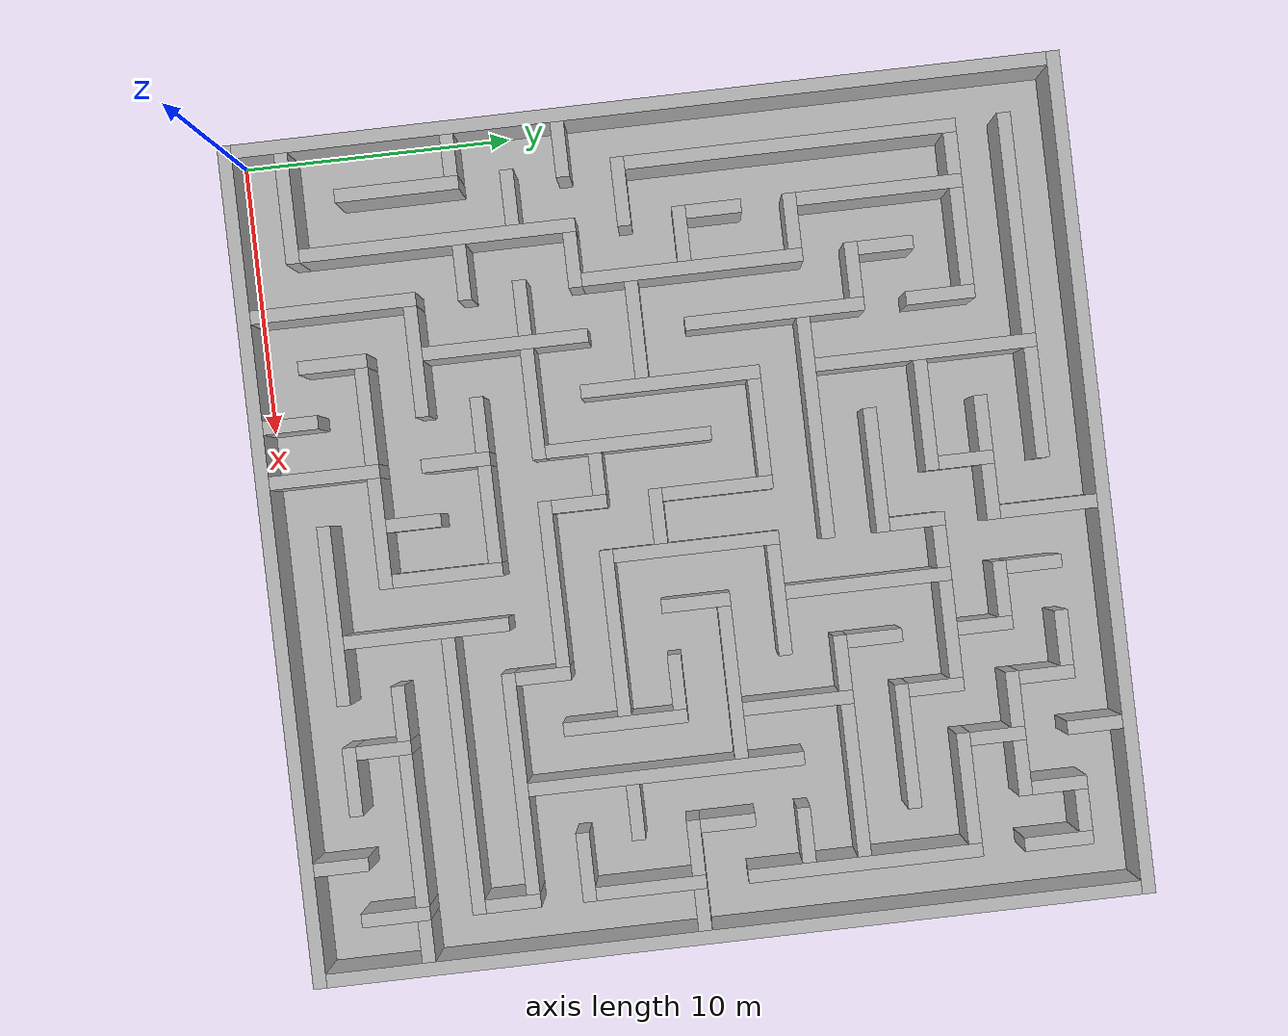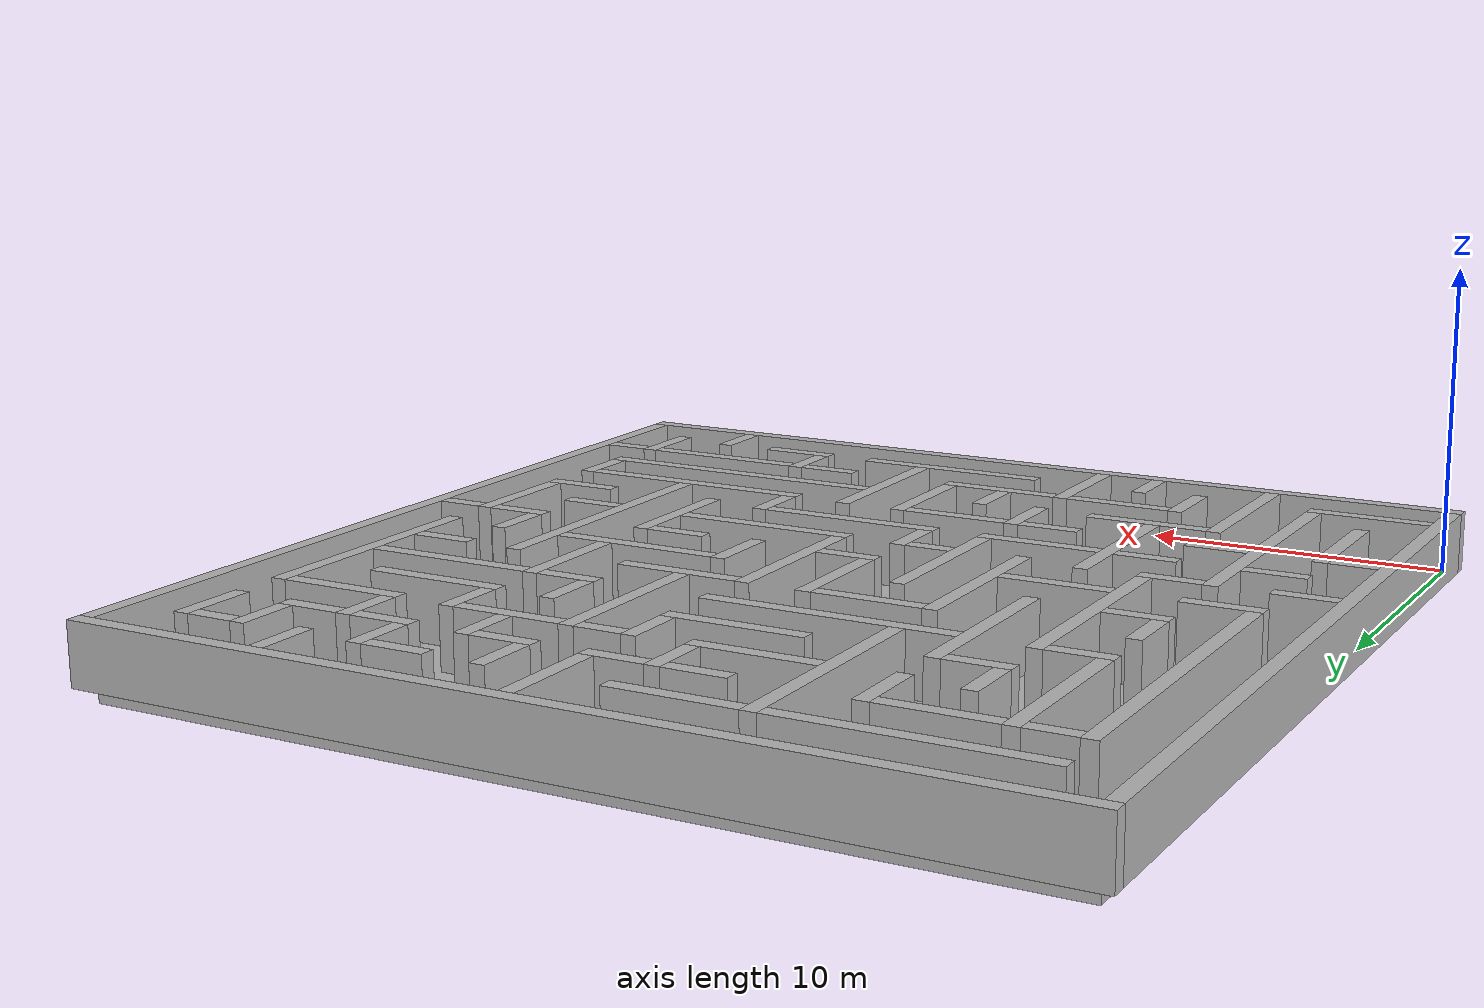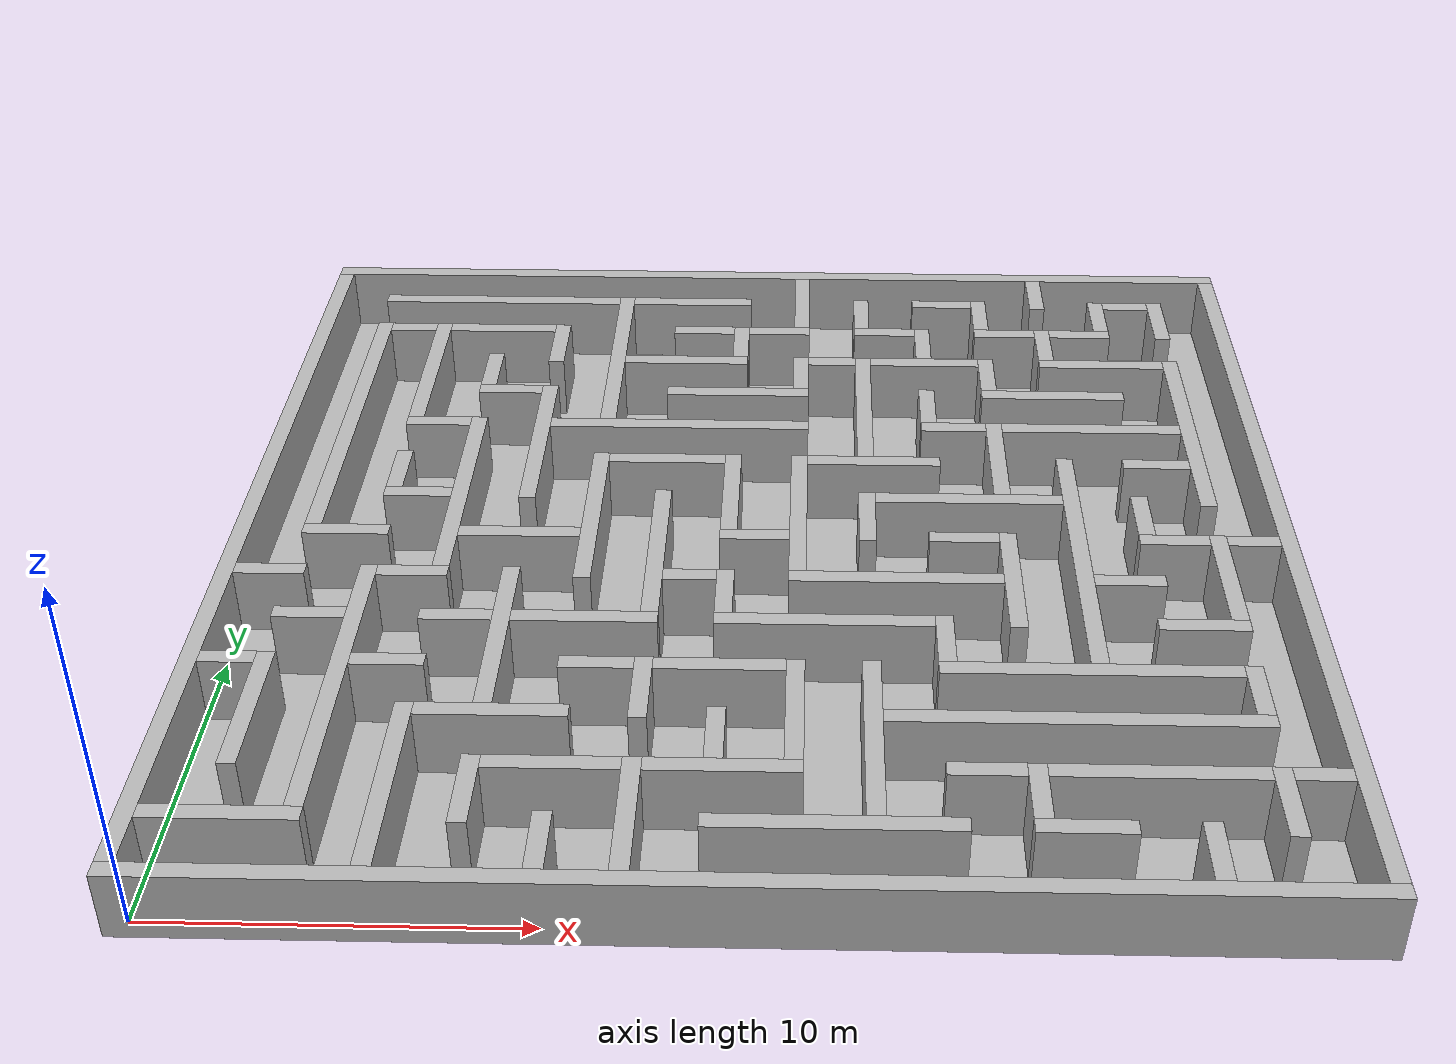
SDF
<?xml version="1.0" ?>
<sdf version="1.7">
  <world name="04_maze_narrow">
    <gravity>0 0 -9.8</gravity>
    <include>
      <uri>model://sun</uri>
    </include>

    <model name="ground_plane_custom">
      <static>true</static>
      <pose>15.000000 15.000000 -0.250000 0 0 0</pose>
      <link name="link">
        <collision name="collision">
          <geometry>
            <box>
              <size>30.000000 30.000000 0.500000</size>
            </box>
          </geometry>
        </collision>
        <visual name="visual">
          <geometry>
            <box>
              <size>30.000000 30.000000 0.500000</size>
            </box>
          </geometry>
        </visual>
      </link>
    </model>

    <model name="outer_wall_bottom">
      <static>true</static>
      <pose>15.000000 -0.250000 1.000000 0 0 0</pose>
      <link name="link">
        <collision name="collision">
          <geometry>
            <box>
              <size>31.000000 0.500000 2.000000</size>
            </box>
          </geometry>
        </collision>
        <visual name="visual">
          <geometry>
            <box>
              <size>31.000000 0.500000 2.000000</size>
            </box>
          </geometry>
        </visual>
      </link>
    </model>
    <model name="outer_wall_top">
      <static>true</static>
      <pose>15.000000 30.250000 1.000000 0 0 0</pose>
      <link name="link">
        <collision name="collision">
          <geometry>
            <box>
              <size>31.000000 0.500000 2.000000</size>
            </box>
          </geometry>
        </collision>
        <visual name="visual">
          <geometry>
            <box>
              <size>31.000000 0.500000 2.000000</size>
            </box>
          </geometry>
        </visual>
      </link>
    </model>
    <model name="outer_wall_left">
      <static>true</static>
      <pose>-0.250000 15.000000 1.000000 0 0 0</pose>
      <link name="link">
        <collision name="collision">
          <geometry>
            <box>
              <size>0.500000 30.000000 2.000000</size>
            </box>
          </geometry>
        </collision>
        <visual name="visual">
          <geometry>
            <box>
              <size>0.500000 30.000000 2.000000</size>
            </box>
          </geometry>
        </visual>
      </link>
    </model>
    <model name="outer_wall_right">
      <static>true</static>
      <pose>30.250000 15.000000 1.000000 0 0 0</pose>
      <link name="link">
        <collision name="collision">
          <geometry>
            <box>
              <size>0.500000 30.000000 2.000000</size>
            </box>
          </geometry>
        </collision>
        <visual name="visual">
          <geometry>
            <box>
              <size>0.500000 30.000000 2.000000</size>
            </box>
          </geometry>
        </visual>
      </link>
    </model>
    <model name="maze_wall_0">
      <static>true</static>
      <pose>5.850000 3.050000 1.000000 0 0 0</pose>
      <link name="link">
        <collision name="collision">
          <geometry>
            <box>
              <size>0.500000 6.100000 2.000000</size>
            </box>
          </geometry>
        </collision>
        <visual name="visual">
          <geometry>
            <box>
              <size>0.500000 6.100000 2.000000</size>
            </box>
          </geometry>
        </visual>
      </link>
    </model>
    <model name="maze_wall_1">
      <static>true</static>
      <pose>9.916667 1.016667 1.000000 0 0 0</pose>
      <link name="link">
        <collision name="collision">
          <geometry>
            <box>
              <size>0.500000 2.033333 2.000000</size>
            </box>
          </geometry>
        </collision>
        <visual name="visual">
          <geometry>
            <box>
              <size>0.500000 2.033333 2.000000</size>
            </box>
          </geometry>
        </visual>
      </link>
    </model>
    <model name="maze_wall_2">
      <static>true</static>
      <pose>11.950000 2.033333 1.000000 0 0 0</pose>
      <link name="link">
        <collision name="collision">
          <geometry>
            <box>
              <size>0.500000 4.066667 2.000000</size>
            </box>
          </geometry>
        </collision>
        <visual name="visual">
          <geometry>
            <box>
              <size>0.500000 4.066667 2.000000</size>
            </box>
          </geometry>
        </visual>
      </link>
    </model>
    <model name="maze_wall_3">
      <static>true</static>
      <pose>26.183333 1.016667 1.000000 0 0 0</pose>
      <link name="link">
        <collision name="collision">
          <geometry>
            <box>
              <size>0.500000 2.033333 2.000000</size>
            </box>
          </geometry>
        </collision>
        <visual name="visual">
          <geometry>
            <box>
              <size>0.500000 2.033333 2.000000</size>
            </box>
          </geometry>
        </visual>
      </link>
    </model>
    <model name="maze_wall_4">
      <static>true</static>
      <pose>2.033333 1.783333 1.000000 0 0 0</pose>
      <link name="link">
        <collision name="collision">
          <geometry>
            <box>
              <size>4.066667 0.500000 2.000000</size>
            </box>
          </geometry>
        </collision>
        <visual name="visual">
          <geometry>
            <box>
              <size>4.066667 0.500000 2.000000</size>
            </box>
          </geometry>
        </visual>
      </link>
    </model>
    <model name="maze_wall_5">
      <static>true</static>
      <pose>7.883333 2.800000 1.000000 0 0 0</pose>
      <link name="link">
        <collision name="collision">
          <geometry>
            <box>
              <size>0.500000 2.533333 2.000000</size>
            </box>
          </geometry>
        </collision>
        <visual name="visual">
          <geometry>
            <box>
              <size>0.500000 2.533333 2.000000</size>
            </box>
          </geometry>
        </visual>
      </link>
    </model>
    <model name="maze_wall_6">
      <static>true</static>
      <pose>17.033333 1.783333 1.000000 0 0 0</pose>
      <link name="link">
        <collision name="collision">
          <geometry>
            <box>
              <size>6.600000 0.500000 2.000000</size>
            </box>
          </geometry>
        </collision>
        <visual name="visual">
          <geometry>
            <box>
              <size>6.600000 0.500000 2.000000</size>
            </box>
          </geometry>
        </visual>
      </link>
    </model>
    <model name="maze_wall_7">
      <static>true</static>
      <pose>23.133333 1.783333 1.000000 0 0 0</pose>
      <link name="link">
        <collision name="collision">
          <geometry>
            <box>
              <size>2.533333 0.500000 2.000000</size>
            </box>
          </geometry>
        </collision>
        <visual name="visual">
          <geometry>
            <box>
              <size>2.533333 0.500000 2.000000</size>
            </box>
          </geometry>
        </visual>
      </link>
    </model>
    <model name="maze_wall_8">
      <static>true</static>
      <pose>28.216667 2.800000 1.000000 0 0 0</pose>
      <link name="link">
        <collision name="collision">
          <geometry>
            <box>
              <size>0.500000 2.533333 2.000000</size>
            </box>
          </geometry>
        </collision>
        <visual name="visual">
          <geometry>
            <box>
              <size>0.500000 2.533333 2.000000</size>
            </box>
          </geometry>
        </visual>
      </link>
    </model>
    <model name="maze_wall_9">
      <static>true</static>
      <pose>3.816667 7.116667 1.000000 0 0 0</pose>
      <link name="link">
        <collision name="collision">
          <geometry>
            <box>
              <size>0.500000 10.166667 2.000000</size>
            </box>
          </geometry>
        </collision>
        <visual name="visual">
          <geometry>
            <box>
              <size>0.500000 10.166667 2.000000</size>
            </box>
          </geometry>
        </visual>
      </link>
    </model>
    <model name="maze_wall_10">
      <static>true</static>
      <pose>18.050000 5.083333 1.000000 0 0 0</pose>
      <link name="link">
        <collision name="collision">
          <geometry>
            <box>
              <size>0.500000 6.100000 2.000000</size>
            </box>
          </geometry>
        </collision>
        <visual name="visual">
          <geometry>
            <box>
              <size>0.500000 6.100000 2.000000</size>
            </box>
          </geometry>
        </visual>
      </link>
    </model>
    <model name="maze_wall_11">
      <static>true</static>
      <pose>22.116667 3.050000 1.000000 0 0 0</pose>
      <link name="link">
        <collision name="collision">
          <geometry>
            <box>
              <size>0.500000 2.033333 2.000000</size>
            </box>
          </geometry>
        </collision>
        <visual name="visual">
          <geometry>
            <box>
              <size>0.500000 2.033333 2.000000</size>
            </box>
          </geometry>
        </visual>
      </link>
    </model>
    <model name="maze_wall_12">
      <static>true</static>
      <pose>1.783333 5.850000 1.000000 0 0 0</pose>
      <link name="link">
        <collision name="collision">
          <geometry>
            <box>
              <size>0.500000 4.566667 2.000000</size>
            </box>
          </geometry>
        </collision>
        <visual name="visual">
          <geometry>
            <box>
              <size>0.500000 4.566667 2.000000</size>
            </box>
          </geometry>
        </visual>
      </link>
    </model>
    <model name="maze_wall_13">
      <static>true</static>
      <pose>9.916667 3.816667 1.000000 0 0 0</pose>
      <link name="link">
        <collision name="collision">
          <geometry>
            <box>
              <size>3.566667 0.500000 2.000000</size>
            </box>
          </geometry>
        </collision>
        <visual name="visual">
          <geometry>
            <box>
              <size>3.566667 0.500000 2.000000</size>
            </box>
          </geometry>
        </visual>
      </link>
    </model>
    <model name="maze_wall_14">
      <static>true</static>
      <pose>14.233333 3.816667 1.000000 0 0 0</pose>
      <link name="link">
        <collision name="collision">
          <geometry>
            <box>
              <size>4.066667 0.500000 2.000000</size>
            </box>
          </geometry>
        </collision>
        <visual name="visual">
          <geometry>
            <box>
              <size>4.066667 0.500000 2.000000</size>
            </box>
          </geometry>
        </visual>
      </link>
    </model>
    <model name="maze_wall_15">
      <static>true</static>
      <pose>20.850000 3.816667 1.000000 0 0 0</pose>
      <link name="link">
        <collision name="collision">
          <geometry>
            <box>
              <size>2.033333 0.500000 2.000000</size>
            </box>
          </geometry>
        </collision>
        <visual name="visual">
          <geometry>
            <box>
              <size>2.033333 0.500000 2.000000</size>
            </box>
          </geometry>
        </visual>
      </link>
    </model>
    <model name="maze_wall_16">
      <static>true</static>
      <pose>25.166667 3.816667 1.000000 0 0 0</pose>
      <link name="link">
        <collision name="collision">
          <geometry>
            <box>
              <size>5.600000 0.500000 2.000000</size>
            </box>
          </geometry>
        </collision>
        <visual name="visual">
          <geometry>
            <box>
              <size>5.600000 0.500000 2.000000</size>
            </box>
          </geometry>
        </visual>
      </link>
    </model>
    <model name="maze_wall_17">
      <static>true</static>
      <pose>29.233333 3.816667 1.000000 0 0 0</pose>
      <link name="link">
        <collision name="collision">
          <geometry>
            <box>
              <size>1.533333 0.500000 2.000000</size>
            </box>
          </geometry>
        </collision>
        <visual name="visual">
          <geometry>
            <box>
              <size>1.533333 0.500000 2.000000</size>
            </box>
          </geometry>
        </visual>
      </link>
    </model>
    <model name="maze_wall_18">
      <static>true</static>
      <pose>13.983333 5.083333 1.000000 0 0 0</pose>
      <link name="link">
        <collision name="collision">
          <geometry>
            <box>
              <size>0.500000 2.033333 2.000000</size>
            </box>
          </geometry>
        </collision>
        <visual name="visual">
          <geometry>
            <box>
              <size>0.500000 2.033333 2.000000</size>
            </box>
          </geometry>
        </visual>
      </link>
    </model>
    <model name="maze_wall_19">
      <static>true</static>
      <pose>16.016667 6.100000 1.000000 0 0 0</pose>
      <link name="link">
        <collision name="collision">
          <geometry>
            <box>
              <size>0.500000 4.066667 2.000000</size>
            </box>
          </geometry>
        </collision>
        <visual name="visual">
          <geometry>
            <box>
              <size>0.500000 4.066667 2.000000</size>
            </box>
          </geometry>
        </visual>
      </link>
    </model>
    <model name="maze_wall_20">
      <static>true</static>
      <pose>8.133333 5.850000 1.000000 0 0 0</pose>
      <link name="link">
        <collision name="collision">
          <geometry>
            <box>
              <size>4.066667 0.500000 2.000000</size>
            </box>
          </geometry>
        </collision>
        <visual name="visual">
          <geometry>
            <box>
              <size>4.066667 0.500000 2.000000</size>
            </box>
          </geometry>
        </visual>
      </link>
    </model>
    <model name="maze_wall_21">
      <static>true</static>
      <pose>11.950000 6.866667 1.000000 0 0 0</pose>
      <link name="link">
        <collision name="collision">
          <geometry>
            <box>
              <size>0.500000 2.533333 2.000000</size>
            </box>
          </geometry>
        </collision>
        <visual name="visual">
          <geometry>
            <box>
              <size>0.500000 2.533333 2.000000</size>
            </box>
          </geometry>
        </visual>
      </link>
    </model>
    <model name="maze_wall_22">
      <static>true</static>
      <pose>23.383333 5.850000 1.000000 0 0 0</pose>
      <link name="link">
        <collision name="collision">
          <geometry>
            <box>
              <size>10.166667 0.500000 2.000000</size>
            </box>
          </geometry>
        </collision>
        <visual name="visual">
          <geometry>
            <box>
              <size>10.166667 0.500000 2.000000</size>
            </box>
          </geometry>
        </visual>
      </link>
    </model>
    <model name="maze_wall_23">
      <static>true</static>
      <pose>7.883333 9.150000 1.000000 0 0 0</pose>
      <link name="link">
        <collision name="collision">
          <geometry>
            <box>
              <size>0.500000 6.100000 2.000000</size>
            </box>
          </geometry>
        </collision>
        <visual name="visual">
          <geometry>
            <box>
              <size>0.500000 6.100000 2.000000</size>
            </box>
          </geometry>
        </visual>
      </link>
    </model>
    <model name="maze_wall_24">
      <static>true</static>
      <pose>28.216667 7.116667 1.000000 0 0 0</pose>
      <link name="link">
        <collision name="collision">
          <geometry>
            <box>
              <size>0.500000 2.033333 2.000000</size>
            </box>
          </geometry>
        </collision>
        <visual name="visual">
          <geometry>
            <box>
              <size>0.500000 2.033333 2.000000</size>
            </box>
          </geometry>
        </visual>
      </link>
    </model>
    <model name="maze_wall_25">
      <static>true</static>
      <pose>0.766667 7.883333 1.000000 0 0 0</pose>
      <link name="link">
        <collision name="collision">
          <geometry>
            <box>
              <size>1.533333 0.500000 2.000000</size>
            </box>
          </geometry>
        </collision>
        <visual name="visual">
          <geometry>
            <box>
              <size>1.533333 0.500000 2.000000</size>
            </box>
          </geometry>
        </visual>
      </link>
    </model>
    <model name="maze_wall_26">
      <static>true</static>
      <pose>5.083333 7.883333 1.000000 0 0 0</pose>
      <link name="link">
        <collision name="collision">
          <geometry>
            <box>
              <size>2.033333 0.500000 2.000000</size>
            </box>
          </geometry>
        </collision>
        <visual name="visual">
          <geometry>
            <box>
              <size>2.033333 0.500000 2.000000</size>
            </box>
          </geometry>
        </visual>
      </link>
    </model>
    <model name="maze_wall_27">
      <static>true</static>
      <pose>10.683333 7.883333 1.000000 0 0 0</pose>
      <link name="link">
        <collision name="collision">
          <geometry>
            <box>
              <size>2.033333 0.500000 2.000000</size>
            </box>
          </geometry>
        </collision>
        <visual name="visual">
          <geometry>
            <box>
              <size>2.033333 0.500000 2.000000</size>
            </box>
          </geometry>
        </visual>
      </link>
    </model>
    <model name="maze_wall_28">
      <static>true</static>
      <pose>13.983333 7.883333 1.000000 0 0 0</pose>
      <link name="link">
        <collision name="collision">
          <geometry>
            <box>
              <size>3.566667 0.500000 2.000000</size>
            </box>
          </geometry>
        </collision>
        <visual name="visual">
          <geometry>
            <box>
              <size>3.566667 0.500000 2.000000</size>
            </box>
          </geometry>
        </visual>
      </link>
    </model>
    <model name="maze_wall_29">
      <static>true</static>
      <pose>23.900000 7.883333 1.000000 0 0 0</pose>
      <link name="link">
        <collision name="collision">
          <geometry>
            <box>
              <size>8.133333 0.500000 2.000000</size>
            </box>
          </geometry>
        </collision>
        <visual name="visual">
          <geometry>
            <box>
              <size>8.133333 0.500000 2.000000</size>
            </box>
          </geometry>
        </visual>
      </link>
    </model>
    <model name="maze_wall_30">
      <static>true</static>
      <pose>20.083333 9.150000 1.000000 0 0 0</pose>
      <link name="link">
        <collision name="collision">
          <geometry>
            <box>
              <size>0.500000 2.033333 2.000000</size>
            </box>
          </geometry>
        </collision>
        <visual name="visual">
          <geometry>
            <box>
              <size>0.500000 2.033333 2.000000</size>
            </box>
          </geometry>
        </visual>
      </link>
    </model>
    <model name="maze_wall_31">
      <static>true</static>
      <pose>24.150000 13.216667 1.000000 0 0 0</pose>
      <link name="link">
        <collision name="collision">
          <geometry>
            <box>
              <size>0.500000 10.166667 2.000000</size>
            </box>
          </geometry>
        </collision>
        <visual name="visual">
          <geometry>
            <box>
              <size>0.500000 10.166667 2.000000</size>
            </box>
          </geometry>
        </visual>
      </link>
    </model>
    <model name="maze_wall_32">
      <static>true</static>
      <pose>2.550000 9.916667 1.000000 0 0 0</pose>
      <link name="link">
        <collision name="collision">
          <geometry>
            <box>
              <size>2.033333 0.500000 2.000000</size>
            </box>
          </geometry>
        </collision>
        <visual name="visual">
          <geometry>
            <box>
              <size>2.033333 0.500000 2.000000</size>
            </box>
          </geometry>
        </visual>
      </link>
    </model>
    <model name="maze_wall_33">
      <static>true</static>
      <pose>6.616667 9.916667 1.000000 0 0 0</pose>
      <link name="link">
        <collision name="collision">
          <geometry>
            <box>
              <size>2.033333 0.500000 2.000000</size>
            </box>
          </geometry>
        </collision>
        <visual name="visual">
          <geometry>
            <box>
              <size>2.033333 0.500000 2.000000</size>
            </box>
          </geometry>
        </visual>
      </link>
    </model>
    <model name="maze_wall_34">
      <static>true</static>
      <pose>10.166667 9.916667 1.000000 0 0 0</pose>
      <link name="link">
        <collision name="collision">
          <geometry>
            <box>
              <size>4.066667 0.500000 2.000000</size>
            </box>
          </geometry>
        </collision>
        <visual name="visual">
          <geometry>
            <box>
              <size>4.066667 0.500000 2.000000</size>
            </box>
          </geometry>
        </visual>
      </link>
    </model>
    <model name="maze_wall_35">
      <static>true</static>
      <pose>16.783333 9.916667 1.000000 0 0 0</pose>
      <link name="link">
        <collision name="collision">
          <geometry>
            <box>
              <size>6.100000 0.500000 2.000000</size>
            </box>
          </geometry>
        </collision>
        <visual name="visual">
          <geometry>
            <box>
              <size>6.100000 0.500000 2.000000</size>
            </box>
          </geometry>
        </visual>
      </link>
    </model>
    <model name="maze_wall_36">
      <static>true</static>
      <pose>22.116667 11.950000 1.000000 0 0 0</pose>
      <link name="link">
        <collision name="collision">
          <geometry>
            <box>
              <size>0.500000 4.566667 2.000000</size>
            </box>
          </geometry>
        </collision>
        <visual name="visual">
          <geometry>
            <box>
              <size>0.500000 4.566667 2.000000</size>
            </box>
          </geometry>
        </visual>
      </link>
    </model>
    <model name="maze_wall_37">
      <static>true</static>
      <pose>27.200000 9.916667 1.000000 0 0 0</pose>
      <link name="link">
        <collision name="collision">
          <geometry>
            <box>
              <size>2.533333 0.500000 2.000000</size>
            </box>
          </geometry>
        </collision>
        <visual name="visual">
          <geometry>
            <box>
              <size>2.533333 0.500000 2.000000</size>
            </box>
          </geometry>
        </visual>
      </link>
    </model>
    <model name="maze_wall_38">
      <static>true</static>
      <pose>11.950000 13.216667 1.000000 0 0 0</pose>
      <link name="link">
        <collision name="collision">
          <geometry>
            <box>
              <size>0.500000 6.100000 2.000000</size>
            </box>
          </geometry>
        </collision>
        <visual name="visual">
          <geometry>
            <box>
              <size>0.500000 6.100000 2.000000</size>
            </box>
          </geometry>
        </visual>
      </link>
    </model>
    <model name="maze_wall_39">
      <static>true</static>
      <pose>13.983333 11.183333 1.000000 0 0 0</pose>
      <link name="link">
        <collision name="collision">
          <geometry>
            <box>
              <size>0.500000 2.033333 2.000000</size>
            </box>
          </geometry>
        </collision>
        <visual name="visual">
          <geometry>
            <box>
              <size>0.500000 2.033333 2.000000</size>
            </box>
          </geometry>
        </visual>
      </link>
    </model>
    <model name="maze_wall_40">
      <static>true</static>
      <pose>28.216667 12.200000 1.000000 0 0 0</pose>
      <link name="link">
        <collision name="collision">
          <geometry>
            <box>
              <size>0.500000 4.066667 2.000000</size>
            </box>
          </geometry>
        </collision>
        <visual name="visual">
          <geometry>
            <box>
              <size>0.500000 4.066667 2.000000</size>
            </box>
          </geometry>
        </visual>
      </link>
    </model>
    <model name="maze_wall_41">
      <static>true</static>
      <pose>1.016667 11.950000 1.000000 0 0 0</pose>
      <link name="link">
        <collision name="collision">
          <geometry>
            <box>
              <size>2.033333 0.500000 2.000000</size>
            </box>
          </geometry>
        </collision>
        <visual name="visual">
          <geometry>
            <box>
              <size>2.033333 0.500000 2.000000</size>
            </box>
          </geometry>
        </visual>
      </link>
    </model>
    <model name="maze_wall_42">
      <static>true</static>
      <pose>5.083333 11.950000 1.000000 0 0 0</pose>
      <link name="link">
        <collision name="collision">
          <geometry>
            <box>
              <size>2.033333 0.500000 2.000000</size>
            </box>
          </geometry>
        </collision>
        <visual name="visual">
          <geometry>
            <box>
              <size>2.033333 0.500000 2.000000</size>
            </box>
          </geometry>
        </visual>
      </link>
    </model>
    <model name="maze_wall_43">
      <static>true</static>
      <pose>9.916667 15.000000 1.000000 0 0 0</pose>
      <link name="link">
        <collision name="collision">
          <geometry>
            <box>
              <size>0.500000 6.600000 2.000000</size>
            </box>
          </geometry>
        </collision>
        <visual name="visual">
          <geometry>
            <box>
              <size>0.500000 6.600000 2.000000</size>
            </box>
          </geometry>
        </visual>
      </link>
    </model>
    <model name="maze_wall_44">
      <static>true</static>
      <pose>12.966667 11.950000 1.000000 0 0 0</pose>
      <link name="link">
        <collision name="collision">
          <geometry>
            <box>
              <size>1.533333 0.500000 2.000000</size>
            </box>
          </geometry>
        </collision>
        <visual name="visual">
          <geometry>
            <box>
              <size>1.533333 0.500000 2.000000</size>
            </box>
          </geometry>
        </visual>
      </link>
    </model>
    <model name="maze_wall_45">
      <static>true</static>
      <pose>18.816667 11.950000 1.000000 0 0 0</pose>
      <link name="link">
        <collision name="collision">
          <geometry>
            <box>
              <size>6.100000 0.500000 2.000000</size>
            </box>
          </geometry>
        </collision>
        <visual name="visual">
          <geometry>
            <box>
              <size>6.100000 0.500000 2.000000</size>
            </box>
          </geometry>
        </visual>
      </link>
    </model>
    <model name="maze_wall_46">
      <static>true</static>
      <pose>25.416667 11.950000 1.000000 0 0 0</pose>
      <link name="link">
        <collision name="collision">
          <geometry>
            <box>
              <size>2.033333 0.500000 2.000000</size>
            </box>
          </geometry>
        </collision>
        <visual name="visual">
          <geometry>
            <box>
              <size>2.033333 0.500000 2.000000</size>
            </box>
          </geometry>
        </visual>
      </link>
    </model>
    <model name="maze_wall_47">
      <static>true</static>
      <pose>5.850000 16.266667 1.000000 0 0 0</pose>
      <link name="link">
        <collision name="collision">
          <geometry>
            <box>
              <size>0.500000 8.133333 2.000000</size>
            </box>
          </geometry>
        </collision>
        <visual name="visual">
          <geometry>
            <box>
              <size>0.500000 8.133333 2.000000</size>
            </box>
          </geometry>
        </visual>
      </link>
    </model>
    <model name="maze_wall_48">
      <static>true</static>
      <pose>16.016667 15.250000 1.000000 0 0 0</pose>
      <link name="link">
        <collision name="collision">
          <geometry>
            <box>
              <size>0.500000 6.100000 2.000000</size>
            </box>
          </geometry>
        </collision>
        <visual name="visual">
          <geometry>
            <box>
              <size>0.500000 6.100000 2.000000</size>
            </box>
          </geometry>
        </visual>
      </link>
    </model>
    <model name="maze_wall_49">
      <static>true</static>
      <pose>2.800000 13.983333 1.000000 0 0 0</pose>
      <link name="link">
        <collision name="collision">
          <geometry>
            <box>
              <size>2.533333 0.500000 2.000000</size>
            </box>
          </geometry>
        </collision>
        <visual name="visual">
          <geometry>
            <box>
              <size>2.533333 0.500000 2.000000</size>
            </box>
          </geometry>
        </visual>
      </link>
    </model>
    <model name="maze_wall_50">
      <static>true</static>
      <pose>7.883333 13.983333 1.000000 0 0 0</pose>
      <link name="link">
        <collision name="collision">
          <geometry>
            <box>
              <size>3.566667 0.500000 2.000000</size>
            </box>
          </geometry>
        </collision>
        <visual name="visual">
          <geometry>
            <box>
              <size>3.566667 0.500000 2.000000</size>
            </box>
          </geometry>
        </visual>
      </link>
    </model>
    <model name="maze_wall_51">
      <static>true</static>
      <pose>14.750000 13.983333 1.000000 0 0 0</pose>
      <link name="link">
        <collision name="collision">
          <geometry>
            <box>
              <size>2.033333 0.500000 2.000000</size>
            </box>
          </geometry>
        </collision>
        <visual name="visual">
          <geometry>
            <box>
              <size>2.033333 0.500000 2.000000</size>
            </box>
          </geometry>
        </visual>
      </link>
    </model>
    <model name="maze_wall_52">
      <static>true</static>
      <pose>18.050000 15.000000 1.000000 0 0 0</pose>
      <link name="link">
        <collision name="collision">
          <geometry>
            <box>
              <size>0.500000 2.533333 2.000000</size>
            </box>
          </geometry>
        </collision>
        <visual name="visual">
          <geometry>
            <box>
              <size>0.500000 2.533333 2.000000</size>
            </box>
          </geometry>
        </visual>
      </link>
    </model>
    <model name="maze_wall_53">
      <static>true</static>
      <pose>20.850000 13.983333 1.000000 0 0 0</pose>
      <link name="link">
        <collision name="collision">
          <geometry>
            <box>
              <size>2.033333 0.500000 2.000000</size>
            </box>
          </geometry>
        </collision>
        <visual name="visual">
          <geometry>
            <box>
              <size>2.033333 0.500000 2.000000</size>
            </box>
          </geometry>
        </visual>
      </link>
    </model>
    <model name="maze_wall_54">
      <static>true</static>
      <pose>26.950000 13.983333 1.000000 0 0 0</pose>
      <link name="link">
        <collision name="collision">
          <geometry>
            <box>
              <size>2.033333 0.500000 2.000000</size>
            </box>
          </geometry>
        </collision>
        <visual name="visual">
          <geometry>
            <box>
              <size>2.033333 0.500000 2.000000</size>
            </box>
          </geometry>
        </visual>
      </link>
    </model>
    <model name="maze_wall_55">
      <static>true</static>
      <pose>29.233333 13.983333 1.000000 0 0 0</pose>
      <link name="link">
        <collision name="collision">
          <geometry>
            <box>
              <size>1.533333 0.500000 2.000000</size>
            </box>
          </geometry>
        </collision>
        <visual name="visual">
          <geometry>
            <box>
              <size>1.533333 0.500000 2.000000</size>
            </box>
          </geometry>
        </visual>
      </link>
    </model>
    <model name="maze_wall_56">
      <static>true</static>
      <pose>1.783333 20.333333 1.000000 0 0 0</pose>
      <link name="link">
        <collision name="collision">
          <geometry>
            <box>
              <size>0.500000 12.200000 2.000000</size>
            </box>
          </geometry>
        </collision>
        <visual name="visual">
          <geometry>
            <box>
              <size>0.500000 12.200000 2.000000</size>
            </box>
          </geometry>
        </visual>
      </link>
    </model>
    <model name="maze_wall_57">
      <static>true</static>
      <pose>13.983333 16.266667 1.000000 0 0 0</pose>
      <link name="link">
        <collision name="collision">
          <geometry>
            <box>
              <size>0.500000 4.066667 2.000000</size>
            </box>
          </geometry>
        </collision>
        <visual name="visual">
          <geometry>
            <box>
              <size>0.500000 4.066667 2.000000</size>
            </box>
          </geometry>
        </visual>
      </link>
    </model>
    <model name="maze_wall_58">
      <static>true</static>
      <pose>26.183333 15.250000 1.000000 0 0 0</pose>
      <link name="link">
        <collision name="collision">
          <geometry>
            <box>
              <size>0.500000 2.033333 2.000000</size>
            </box>
          </geometry>
        </collision>
        <visual name="visual">
          <geometry>
            <box>
              <size>0.500000 2.033333 2.000000</size>
            </box>
          </geometry>
        </visual>
      </link>
    </model>
    <model name="maze_wall_59">
      <static>true</static>
      <pose>4.583333 16.016667 1.000000 0 0 0</pose>
      <link name="link">
        <collision name="collision">
          <geometry>
            <box>
              <size>2.033333 0.500000 2.000000</size>
            </box>
          </geometry>
        </collision>
        <visual name="visual">
          <geometry>
            <box>
              <size>2.033333 0.500000 2.000000</size>
            </box>
          </geometry>
        </visual>
      </link>
    </model>
    <model name="maze_wall_60">
      <static>true</static>
      <pose>7.883333 19.066667 1.000000 0 0 0</pose>
      <link name="link">
        <collision name="collision">
          <geometry>
            <box>
              <size>0.500000 6.600000 2.000000</size>
            </box>
          </geometry>
        </collision>
        <visual name="visual">
          <geometry>
            <box>
              <size>0.500000 6.600000 2.000000</size>
            </box>
          </geometry>
        </visual>
      </link>
    </model>
    <model name="maze_wall_61">
      <static>true</static>
      <pose>21.100000 16.016667 1.000000 0 0 0</pose>
      <link name="link">
        <collision name="collision">
          <geometry>
            <box>
              <size>5.600000 0.500000 2.000000</size>
            </box>
          </geometry>
        </collision>
        <visual name="visual">
          <geometry>
            <box>
              <size>5.600000 0.500000 2.000000</size>
            </box>
          </geometry>
        </visual>
      </link>
    </model>
    <model name="maze_wall_62">
      <static>true</static>
      <pose>28.216667 20.083333 1.000000 0 0 0</pose>
      <link name="link">
        <collision name="collision">
          <geometry>
            <box>
              <size>0.500000 8.633333 2.000000</size>
            </box>
          </geometry>
        </collision>
        <visual name="visual">
          <geometry>
            <box>
              <size>0.500000 8.633333 2.000000</size>
            </box>
          </geometry>
        </visual>
      </link>
    </model>
    <model name="maze_wall_63">
      <static>true</static>
      <pose>3.816667 17.283333 1.000000 0 0 0</pose>
      <link name="link">
        <collision name="collision">
          <geometry>
            <box>
              <size>0.500000 2.033333 2.000000</size>
            </box>
          </geometry>
        </collision>
        <visual name="visual">
          <geometry>
            <box>
              <size>0.500000 2.033333 2.000000</size>
            </box>
          </geometry>
        </visual>
      </link>
    </model>
    <model name="maze_wall_64">
      <static>true</static>
      <pose>22.116667 18.300000 1.000000 0 0 0</pose>
      <link name="link">
        <collision name="collision">
          <geometry>
            <box>
              <size>0.500000 4.066667 2.000000</size>
            </box>
          </geometry>
        </collision>
        <visual name="visual">
          <geometry>
            <box>
              <size>0.500000 4.066667 2.000000</size>
            </box>
          </geometry>
        </visual>
      </link>
    </model>
    <model name="maze_wall_65">
      <static>true</static>
      <pose>11.950000 18.050000 1.000000 0 0 0</pose>
      <link name="link">
        <collision name="collision">
          <geometry>
            <box>
              <size>3.566667 0.500000 2.000000</size>
            </box>
          </geometry>
        </collision>
        <visual name="visual">
          <geometry>
            <box>
              <size>3.566667 0.500000 2.000000</size>
            </box>
          </geometry>
        </visual>
      </link>
    </model>
    <model name="maze_wall_66">
      <static>true</static>
      <pose>18.300000 18.050000 1.000000 0 0 0</pose>
      <link name="link">
        <collision name="collision">
          <geometry>
            <box>
              <size>4.066667 0.500000 2.000000</size>
            </box>
          </geometry>
        </collision>
        <visual name="visual">
          <geometry>
            <box>
              <size>4.066667 0.500000 2.000000</size>
            </box>
          </geometry>
        </visual>
      </link>
    </model>
    <model name="maze_wall_67">
      <static>true</static>
      <pose>26.950000 18.050000 1.000000 0 0 0</pose>
      <link name="link">
        <collision name="collision">
          <geometry>
            <box>
              <size>2.033333 0.500000 2.000000</size>
            </box>
          </geometry>
        </collision>
        <visual name="visual">
          <geometry>
            <box>
              <size>2.033333 0.500000 2.000000</size>
            </box>
          </geometry>
        </visual>
      </link>
    </model>
    <model name="maze_wall_68">
      <static>true</static>
      <pose>18.050000 21.350000 1.000000 0 0 0</pose>
      <link name="link">
        <collision name="collision">
          <geometry>
            <box>
              <size>0.500000 6.100000 2.000000</size>
            </box>
          </geometry>
        </collision>
        <visual name="visual">
          <geometry>
            <box>
              <size>0.500000 6.100000 2.000000</size>
            </box>
          </geometry>
        </visual>
      </link>
    </model>
    <model name="maze_wall_69">
      <static>true</static>
      <pose>4.583333 20.083333 1.000000 0 0 0</pose>
      <link name="link">
        <collision name="collision">
          <geometry>
            <box>
              <size>2.033333 0.500000 2.000000</size>
            </box>
          </geometry>
        </collision>
        <visual name="visual">
          <geometry>
            <box>
              <size>2.033333 0.500000 2.000000</size>
            </box>
          </geometry>
        </visual>
      </link>
    </model>
    <model name="maze_wall_70">
      <static>true</static>
      <pose>12.200000 20.083333 1.000000 0 0 0</pose>
      <link name="link">
        <collision name="collision">
          <geometry>
            <box>
              <size>8.133333 0.500000 2.000000</size>
            </box>
          </geometry>
        </collision>
        <visual name="visual">
          <geometry>
            <box>
              <size>8.133333 0.500000 2.000000</size>
            </box>
          </geometry>
        </visual>
      </link>
    </model>
    <model name="maze_wall_71">
      <static>true</static>
      <pose>20.850000 20.083333 1.000000 0 0 0</pose>
      <link name="link">
        <collision name="collision">
          <geometry>
            <box>
              <size>2.033333 0.500000 2.000000</size>
            </box>
          </geometry>
        </collision>
        <visual name="visual">
          <geometry>
            <box>
              <size>2.033333 0.500000 2.000000</size>
            </box>
          </geometry>
        </visual>
      </link>
    </model>
    <model name="maze_wall_72">
      <static>true</static>
      <pose>25.166667 20.083333 1.000000 0 0 0</pose>
      <link name="link">
        <collision name="collision">
          <geometry>
            <box>
              <size>5.600000 0.500000 2.000000</size>
            </box>
          </geometry>
        </collision>
        <visual name="visual">
          <geometry>
            <box>
              <size>5.600000 0.500000 2.000000</size>
            </box>
          </geometry>
        </visual>
      </link>
    </model>
    <model name="maze_wall_73">
      <static>true</static>
      <pose>3.816667 23.383333 1.000000 0 0 0</pose>
      <link name="link">
        <collision name="collision">
          <geometry>
            <box>
              <size>0.500000 6.100000 2.000000</size>
            </box>
          </geometry>
        </collision>
        <visual name="visual">
          <geometry>
            <box>
              <size>0.500000 6.100000 2.000000</size>
            </box>
          </geometry>
        </visual>
      </link>
    </model>
    <model name="maze_wall_74">
      <static>true</static>
      <pose>9.916667 24.400000 1.000000 0 0 0</pose>
      <link name="link">
        <collision name="collision">
          <geometry>
            <box>
              <size>0.500000 8.133333 2.000000</size>
            </box>
          </geometry>
        </collision>
        <visual name="visual">
          <geometry>
            <box>
              <size>0.500000 8.133333 2.000000</size>
            </box>
          </geometry>
        </visual>
      </link>
    </model>
    <model name="maze_wall_75">
      <static>true</static>
      <pose>20.083333 21.350000 1.000000 0 0 0</pose>
      <link name="link">
        <collision name="collision">
          <geometry>
            <box>
              <size>0.500000 2.033333 2.000000</size>
            </box>
          </geometry>
        </collision>
        <visual name="visual">
          <geometry>
            <box>
              <size>0.500000 2.033333 2.000000</size>
            </box>
          </geometry>
        </visual>
      </link>
    </model>
    <model name="maze_wall_76">
      <static>true</static>
      <pose>6.616667 22.116667 1.000000 0 0 0</pose>
      <link name="link">
        <collision name="collision">
          <geometry>
            <box>
              <size>2.033333 0.500000 2.000000</size>
            </box>
          </geometry>
        </collision>
        <visual name="visual">
          <geometry>
            <box>
              <size>2.033333 0.500000 2.000000</size>
            </box>
          </geometry>
        </visual>
      </link>
    </model>
    <model name="maze_wall_77">
      <static>true</static>
      <pose>13.983333 22.116667 1.000000 0 0 0</pose>
      <link name="link">
        <collision name="collision">
          <geometry>
            <box>
              <size>4.566667 0.500000 2.000000</size>
            </box>
          </geometry>
        </collision>
        <visual name="visual">
          <geometry>
            <box>
              <size>4.566667 0.500000 2.000000</size>
            </box>
          </geometry>
        </visual>
      </link>
    </model>
    <model name="maze_wall_78">
      <static>true</static>
      <pose>24.150000 22.116667 1.000000 0 0 0</pose>
      <link name="link">
        <collision name="collision">
          <geometry>
            <box>
              <size>4.566667 0.500000 2.000000</size>
            </box>
          </geometry>
        </collision>
        <visual name="visual">
          <geometry>
            <box>
              <size>4.566667 0.500000 2.000000</size>
            </box>
          </geometry>
        </visual>
      </link>
    </model>
    <model name="maze_wall_79">
      <static>true</static>
      <pose>5.850000 23.383333 1.000000 0 0 0</pose>
      <link name="link">
        <collision name="collision">
          <geometry>
            <box>
              <size>0.500000 2.033333 2.000000</size>
            </box>
          </geometry>
        </collision>
        <visual name="visual">
          <geometry>
            <box>
              <size>0.500000 2.033333 2.000000</size>
            </box>
          </geometry>
        </visual>
      </link>
    </model>
    <model name="maze_wall_80">
      <static>true</static>
      <pose>16.016667 23.383333 1.000000 0 0 0</pose>
      <link name="link">
        <collision name="collision">
          <geometry>
            <box>
              <size>0.500000 2.033333 2.000000</size>
            </box>
          </geometry>
        </collision>
        <visual name="visual">
          <geometry>
            <box>
              <size>0.500000 2.033333 2.000000</size>
            </box>
          </geometry>
        </visual>
      </link>
    </model>
    <model name="maze_wall_81">
      <static>true</static>
      <pose>22.116667 23.383333 1.000000 0 0 0</pose>
      <link name="link">
        <collision name="collision">
          <geometry>
            <box>
              <size>0.500000 2.033333 2.000000</size>
            </box>
          </geometry>
        </collision>
        <visual name="visual">
          <geometry>
            <box>
              <size>0.500000 2.033333 2.000000</size>
            </box>
          </geometry>
        </visual>
      </link>
    </model>
    <model name="maze_wall_82">
      <static>true</static>
      <pose>7.883333 25.166667 1.000000 0 0 0</pose>
      <link name="link">
        <collision name="collision">
          <geometry>
            <box>
              <size>0.500000 2.533333 2.000000</size>
            </box>
          </geometry>
        </collision>
        <visual name="visual">
          <geometry>
            <box>
              <size>0.500000 2.533333 2.000000</size>
            </box>
          </geometry>
        </visual>
      </link>
    </model>
    <model name="maze_wall_83">
      <static>true</static>
      <pose>12.200000 24.150000 1.000000 0 0 0</pose>
      <link name="link">
        <collision name="collision">
          <geometry>
            <box>
              <size>4.066667 0.500000 2.000000</size>
            </box>
          </geometry>
        </collision>
        <visual name="visual">
          <geometry>
            <box>
              <size>4.066667 0.500000 2.000000</size>
            </box>
          </geometry>
        </visual>
      </link>
    </model>
    <model name="maze_wall_84">
      <static>true</static>
      <pose>17.033333 24.150000 1.000000 0 0 0</pose>
      <link name="link">
        <collision name="collision">
          <geometry>
            <box>
              <size>1.533333 0.500000 2.000000</size>
            </box>
          </geometry>
        </collision>
        <visual name="visual">
          <geometry>
            <box>
              <size>1.533333 0.500000 2.000000</size>
            </box>
          </geometry>
        </visual>
      </link>
    </model>
    <model name="maze_wall_85">
      <static>true</static>
      <pose>20.083333 24.150000 1.000000 0 0 0</pose>
      <link name="link">
        <collision name="collision">
          <geometry>
            <box>
              <size>3.566667 0.500000 2.000000</size>
            </box>
          </geometry>
        </collision>
        <visual name="visual">
          <geometry>
            <box>
              <size>3.566667 0.500000 2.000000</size>
            </box>
          </geometry>
        </visual>
      </link>
    </model>
    <model name="maze_wall_86">
      <static>true</static>
      <pose>25.933333 24.150000 1.000000 0 0 0</pose>
      <link name="link">
        <collision name="collision">
          <geometry>
            <box>
              <size>4.066667 0.500000 2.000000</size>
            </box>
          </geometry>
        </collision>
        <visual name="visual">
          <geometry>
            <box>
              <size>4.066667 0.500000 2.000000</size>
            </box>
          </geometry>
        </visual>
      </link>
    </model>
    <model name="maze_wall_87">
      <static>true</static>
      <pose>13.983333 25.416667 1.000000 0 0 0</pose>
      <link name="link">
        <collision name="collision">
          <geometry>
            <box>
              <size>0.500000 2.033333 2.000000</size>
            </box>
          </geometry>
        </collision>
        <visual name="visual">
          <geometry>
            <box>
              <size>0.500000 2.033333 2.000000</size>
            </box>
          </geometry>
        </visual>
      </link>
    </model>
    <model name="maze_wall_88">
      <static>true</static>
      <pose>20.083333 25.416667 1.000000 0 0 0</pose>
      <link name="link">
        <collision name="collision">
          <geometry>
            <box>
              <size>0.500000 2.033333 2.000000</size>
            </box>
          </geometry>
        </collision>
        <visual name="visual">
          <geometry>
            <box>
              <size>0.500000 2.033333 2.000000</size>
            </box>
          </geometry>
        </visual>
      </link>
    </model>
    <model name="maze_wall_89">
      <static>true</static>
      <pose>24.150000 25.416667 1.000000 0 0 0</pose>
      <link name="link">
        <collision name="collision">
          <geometry>
            <box>
              <size>0.500000 2.033333 2.000000</size>
            </box>
          </geometry>
        </collision>
        <visual name="visual">
          <geometry>
            <box>
              <size>0.500000 2.033333 2.000000</size>
            </box>
          </geometry>
        </visual>
      </link>
    </model>
    <model name="maze_wall_90">
      <static>true</static>
      <pose>2.800000 26.183333 1.000000 0 0 0</pose>
      <link name="link">
        <collision name="collision">
          <geometry>
            <box>
              <size>1.533333 0.500000 2.000000</size>
            </box>
          </geometry>
        </collision>
        <visual name="visual">
          <geometry>
            <box>
              <size>1.533333 0.500000 2.000000</size>
            </box>
          </geometry>
        </visual>
      </link>
    </model>
    <model name="maze_wall_91">
      <static>true</static>
      <pose>5.850000 26.183333 1.000000 0 0 0</pose>
      <link name="link">
        <collision name="collision">
          <geometry>
            <box>
              <size>3.566667 0.500000 2.000000</size>
            </box>
          </geometry>
        </collision>
        <visual name="visual">
          <geometry>
            <box>
              <size>3.566667 0.500000 2.000000</size>
            </box>
          </geometry>
        </visual>
      </link>
    </model>
    <model name="maze_wall_92">
      <static>true</static>
      <pose>12.716667 26.183333 1.000000 0 0 0</pose>
      <link name="link">
        <collision name="collision">
          <geometry>
            <box>
              <size>2.033333 0.500000 2.000000</size>
            </box>
          </geometry>
        </collision>
        <visual name="visual">
          <geometry>
            <box>
              <size>2.033333 0.500000 2.000000</size>
            </box>
          </geometry>
        </visual>
      </link>
    </model>
    <model name="maze_wall_93">
      <static>true</static>
      <pose>15.250000 26.183333 1.000000 0 0 0</pose>
      <link name="link">
        <collision name="collision">
          <geometry>
            <box>
              <size>2.033333 0.500000 2.000000</size>
            </box>
          </geometry>
        </collision>
        <visual name="visual">
          <geometry>
            <box>
              <size>2.033333 0.500000 2.000000</size>
            </box>
          </geometry>
        </visual>
      </link>
    </model>
    <model name="maze_wall_94">
      <static>true</static>
      <pose>18.816667 26.183333 1.000000 0 0 0</pose>
      <link name="link">
        <collision name="collision">
          <geometry>
            <box>
              <size>2.033333 0.500000 2.000000</size>
            </box>
          </geometry>
        </collision>
        <visual name="visual">
          <geometry>
            <box>
              <size>2.033333 0.500000 2.000000</size>
            </box>
          </geometry>
        </visual>
      </link>
    </model>
    <model name="maze_wall_95">
      <static>true</static>
      <pose>22.883333 26.183333 1.000000 0 0 0</pose>
      <link name="link">
        <collision name="collision">
          <geometry>
            <box>
              <size>2.033333 0.500000 2.000000</size>
            </box>
          </geometry>
        </collision>
        <visual name="visual">
          <geometry>
            <box>
              <size>2.033333 0.500000 2.000000</size>
            </box>
          </geometry>
        </visual>
      </link>
    </model>
    <model name="maze_wall_96">
      <static>true</static>
      <pose>25.416667 26.183333 1.000000 0 0 0</pose>
      <link name="link">
        <collision name="collision">
          <geometry>
            <box>
              <size>2.033333 0.500000 2.000000</size>
            </box>
          </geometry>
        </collision>
        <visual name="visual">
          <geometry>
            <box>
              <size>2.033333 0.500000 2.000000</size>
            </box>
          </geometry>
        </visual>
      </link>
    </model>
    <model name="maze_wall_97">
      <static>true</static>
      <pose>28.216667 27.200000 1.000000 0 0 0</pose>
      <link name="link">
        <collision name="collision">
          <geometry>
            <box>
              <size>0.500000 2.533333 2.000000</size>
            </box>
          </geometry>
        </collision>
        <visual name="visual">
          <geometry>
            <box>
              <size>0.500000 2.533333 2.000000</size>
            </box>
          </geometry>
        </visual>
      </link>
    </model>
    <model name="maze_wall_98">
      <static>true</static>
      <pose>16.016667 28.216667 1.000000 0 0 0</pose>
      <link name="link">
        <collision name="collision">
          <geometry>
            <box>
              <size>0.500000 3.566667 2.000000</size>
            </box>
          </geometry>
        </collision>
        <visual name="visual">
          <geometry>
            <box>
              <size>0.500000 3.566667 2.000000</size>
            </box>
          </geometry>
        </visual>
      </link>
    </model>
    <model name="maze_wall_99">
      <static>true</static>
      <pose>18.050000 27.450000 1.000000 0 0 0</pose>
      <link name="link">
        <collision name="collision">
          <geometry>
            <box>
              <size>0.500000 2.033333 2.000000</size>
            </box>
          </geometry>
        </collision>
        <visual name="visual">
          <geometry>
            <box>
              <size>0.500000 2.033333 2.000000</size>
            </box>
          </geometry>
        </visual>
      </link>
    </model>
    <model name="maze_wall_100">
      <static>true</static>
      <pose>22.116667 27.450000 1.000000 0 0 0</pose>
      <link name="link">
        <collision name="collision">
          <geometry>
            <box>
              <size>0.500000 2.033333 2.000000</size>
            </box>
          </geometry>
        </collision>
        <visual name="visual">
          <geometry>
            <box>
              <size>0.500000 2.033333 2.000000</size>
            </box>
          </geometry>
        </visual>
      </link>
    </model>
    <model name="maze_wall_101">
      <static>true</static>
      <pose>26.183333 27.450000 1.000000 0 0 0</pose>
      <link name="link">
        <collision name="collision">
          <geometry>
            <box>
              <size>0.500000 2.033333 2.000000</size>
            </box>
          </geometry>
        </collision>
        <visual name="visual">
          <geometry>
            <box>
              <size>0.500000 2.033333 2.000000</size>
            </box>
          </geometry>
        </visual>
      </link>
    </model>
    <model name="maze_wall_102">
      <static>true</static>
      <pose>5.600000 28.216667 1.000000 0 0 0</pose>
      <link name="link">
        <collision name="collision">
          <geometry>
            <box>
              <size>8.133333 0.500000 2.000000</size>
            </box>
          </geometry>
        </collision>
        <visual name="visual">
          <geometry>
            <box>
              <size>8.133333 0.500000 2.000000</size>
            </box>
          </geometry>
        </visual>
      </link>
    </model>
    <model name="maze_wall_103">
      <static>true</static>
      <pose>12.200000 28.216667 1.000000 0 0 0</pose>
      <link name="link">
        <collision name="collision">
          <geometry>
            <box>
              <size>4.066667 0.500000 2.000000</size>
            </box>
          </geometry>
        </collision>
        <visual name="visual">
          <geometry>
            <box>
              <size>4.066667 0.500000 2.000000</size>
            </box>
          </geometry>
        </visual>
      </link>
    </model>
    <model name="maze_wall_104">
      <static>true</static>
      <pose>20.850000 28.216667 1.000000 0 0 0</pose>
      <link name="link">
        <collision name="collision">
          <geometry>
            <box>
              <size>2.033333 0.500000 2.000000</size>
            </box>
          </geometry>
        </collision>
        <visual name="visual">
          <geometry>
            <box>
              <size>2.033333 0.500000 2.000000</size>
            </box>
          </geometry>
        </visual>
      </link>
    </model>
    <model name="maze_wall_105">
      <static>true</static>
      <pose>24.150000 28.983333 1.000000 0 0 0</pose>
      <link name="link">
        <collision name="collision">
          <geometry>
            <box>
              <size>0.500000 2.033333 2.000000</size>
            </box>
          </geometry>
        </collision>
        <visual name="visual">
          <geometry>
            <box>
              <size>0.500000 2.033333 2.000000</size>
            </box>
          </geometry>
        </visual>
      </link>
    </model>
    <model name="maze_wall_106">
      <static>true</static>
      <pose>27.200000 28.216667 1.000000 0 0 0</pose>
      <link name="link">
        <collision name="collision">
          <geometry>
            <box>
              <size>1.533333 0.500000 2.000000</size>
            </box>
          </geometry>
        </collision>
        <visual name="visual">
          <geometry>
            <box>
              <size>1.533333 0.500000 2.000000</size>
            </box>
          </geometry>
        </visual>
      </link>
    </model>
  </world>
</sdf>
